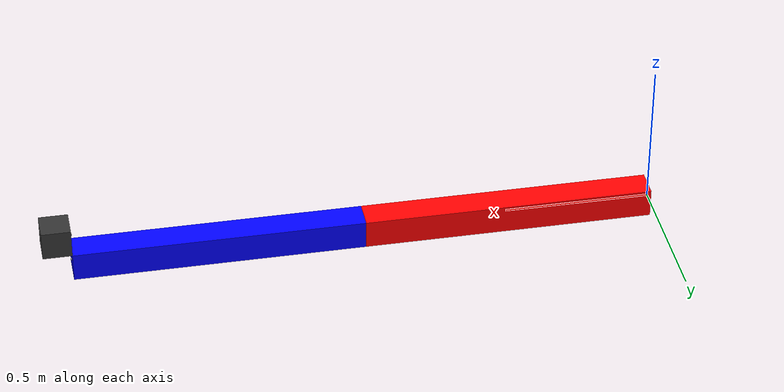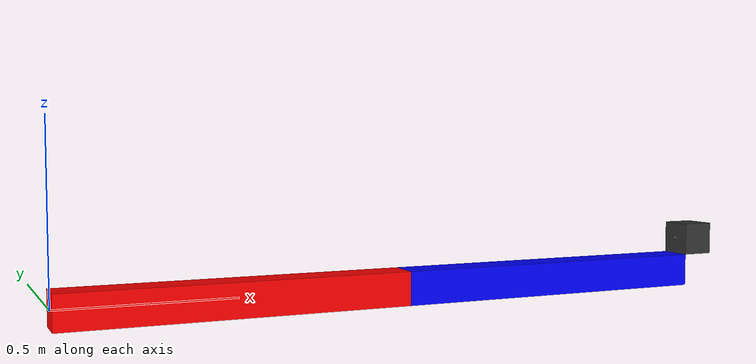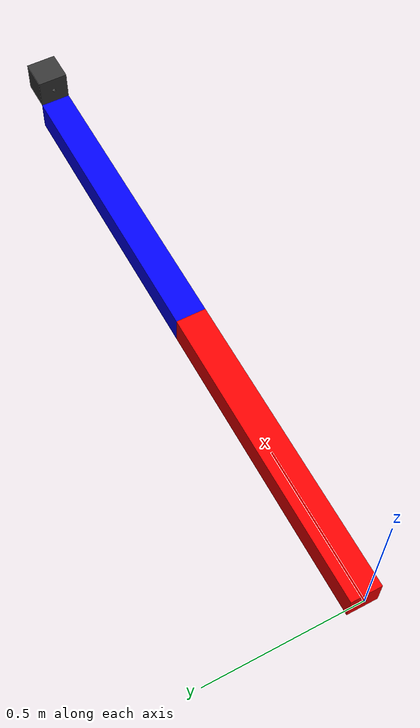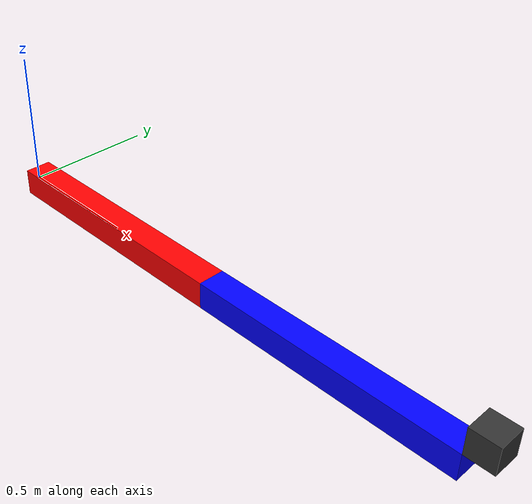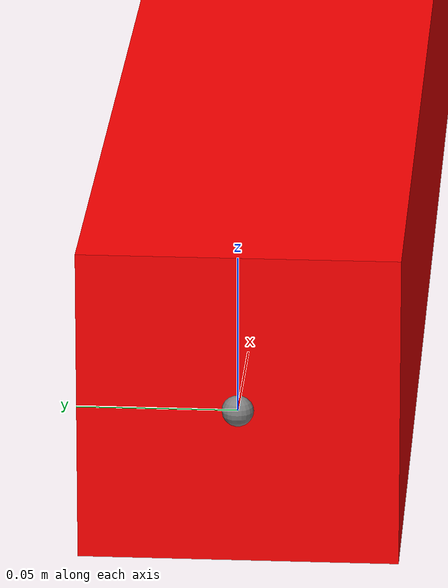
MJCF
<mujoco model="two_dof_robot">
  <compiler angle="radian" meshdir="assets/"/>
  <worldbody>
    <body name="upperarm">
      <inertial pos="0.5 0 0" quat="0.5 0.5 0.5 0.5" mass="27" diaginertia="0.225 0.225 0.0225"/>
      <joint name="joint1" pos="0 0 0" axis="0 0 1" range="-3.14 3.14" actuatorfrcrange="-1000 1000"/>
      <body name="forearm" pos="1 0 0">
        <inertial pos="0.5 0 0" quat="0.5 0.5 0.5 0.5" mass="27" diaginertia="0.225 0.225 0.0225"/>
        <joint name="joint2" pos="0 0 0" axis="0 0 1" range="-3.14 3.14" actuatorfrcrange="-1000 1000"/>
        <geom size="0.5 0.05 0.05" pos="0.5 0 0" type="box" class="collision"/>
        <geom size="0.5 0.05 0.05" pos="0.5 0 0" type="box" rgba="0 0 1 1" class="visual"/>
        <geom size="0.05 0.05 0.05" pos="1.05 0 0.1" type="box" class="collision"/>
        <geom size="0.05 0.05 0.05" pos="1.05 0 0.1" type="box" rgba="0.2 0.2 0.2 1" class="visual"/>
        <site name="forearm" pos="0 0 0" quat="1.0 0 0 0"/>
        <site name="ee_link" pos="1.0 0 0" quat="1.0 0 0 0"/>
        <site name="camera_link" pos="1.05 0 0.1" quat="1.0 0 0 0"/>
        <site name="camera_color_frame" pos="1.0 0 0.1" quat="1.0 0 0 0"/>
        <site name="camera_color_optical_frame" pos="1.0 0 0.1" quat="-0.49999816339744824 0.4999999999966268 0.5000018366025517 -0.4999999999966268"/>
        <site name="camera_color_mujoco_frame" pos="1.0 0 0.1" quat="0.5000006633911983 0.4999974999995599 0.49999933659630164 0.5000024999995599"/>
        <camera name="camera_color" fovy="58" mode="fixed" resolution="640 480" pos="1.0 0 0.1" quat="-0.4999999999966268 -0.49999816339744824 -0.4999999999966268 -0.5000018366025517"/>
      </body>
      <geom size="0.5 0.05 0.05" pos="0.5 0 0" type="box" class="collision"/>
      <geom size="0.5 0.05 0.05" pos="0.5 0 0" type="box" rgba="1 0 0 1" class="visual"/>
      <site name="upperarm" pos="0 0 0" quat="1.0 0 0 0"/>
    </body>
    <site name="world" pos="0 0 0" quat="1.0 0 0 0"/>
    <site name="base" pos="0 0 0" quat="1.0 0 0 0"/>
  </worldbody>
  <option integrator="implicitfast"/>
  <default>
    <default class="visual">
      <geom group="2" type="mesh" contype="0" conaffinity="0"/>
    </default>
    <default class="collision">
      <geom group="3" type="mesh"/>
    </default>
  </default>
  <actuator>
    <position name="joint1" joint="joint1" kp="1000" dampratio="1.0"/>
    <position name="joint2" joint="joint2" kp="1000" dampratio="1.0"/>
  </actuator>
</mujoco>
